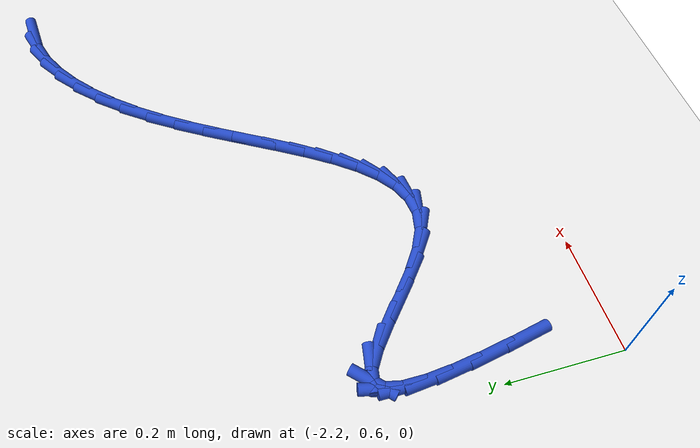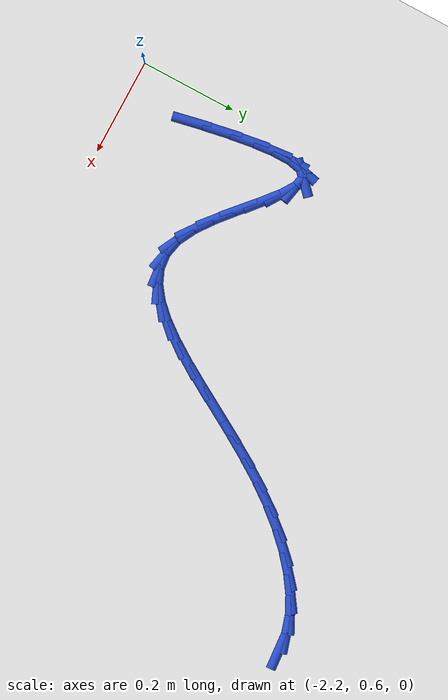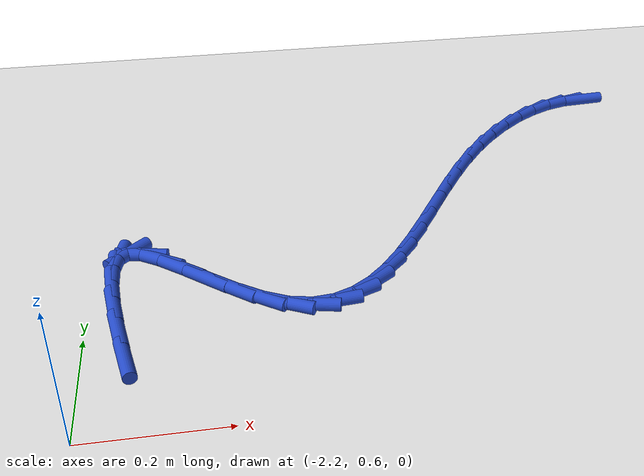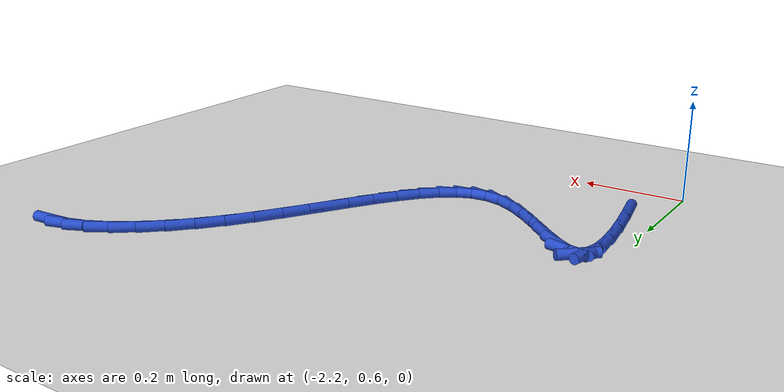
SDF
<sdf version="1.6">
 <world name="default">
  <model name="ground_plane">
   <static>1</static>
   <link name="link">
    <collision name="collision">
     <geometry><plane><normal>0 0 1</normal><size>100 100</size></plane></geometry>
     <surface><friction><ode><mu>100</mu><mu2>50</mu2></ode></friction></surface>
    </collision>
    <visual name="visual">
     <cast_shadows>0</cast_shadows>
     <geometry><plane><normal>0 0 1</normal><size>100 100</size></plane></geometry>
     <material>
      <script><uri>file://media/materials/scripts/gazebo.material</uri><name>Gazebo/WhiteGlow</name></script>
     </material>
    </visual>
   </link>
  </model>
  <model name="line">
   <link name="link_50">
    <pose>-1.2924207423937293 1.3919109432861934 0.01 0 1.57 0.07751048192360882</pose>
    <collision name="collision">
     <geometry><cylinder><radius>0.01</radius><length>0.08</length></cylinder></geometry>
    </collision>
    <visual name="visual">
     <material>
      <script><name>Gazebo/Blue</name><uri>file://media/materials/scripts/gazebo.material</uri></script>
     </material>
     <geometry><cylinder><radius>0.01</radius><length>0.08</length></cylinder></geometry>
    </visual>
   </link>
   <link name="link_51">
    <pose>-1.3282879846106181 1.3891252751725964 0.01 0 1.57 0.29494766049136717</pose>
    <collision name="collision">
     <geometry><cylinder><radius>0.01</radius><length>0.08</length></cylinder></geometry>
    </collision>
    <visual name="visual">
     <material>
      <script><name>Gazebo/Blue</name><uri>file://media/materials/scripts/gazebo.material</uri></script>
     </material>
     <geometry><cylinder><radius>0.01</radius><length>0.08</length></cylinder></geometry>
    </visual>
   </link>
   <link name="link_52">
    <pose>-1.365109434739487 1.3779385854448991 0.01 0 1.57 0.4657607186810607</pose>
    <collision name="collision">
     <geometry><cylinder><radius>0.01</radius><length>0.08</length></cylinder></geometry>
    </collision>
    <visual name="visual">
     <material>
      <script><name>Gazebo/Blue</name><uri>file://media/materials/scripts/gazebo.material</uri></script>
     </material>
     <geometry><cylinder><radius>0.01</radius><length>0.08</length></cylinder></geometry>
    </visual>
   </link>
   <link name="link_53">
    <pose>-1.4023716911295903 1.359208928959297 0.01 0 1.57 0.5994824240193372</pose>
    <collision name="collision">
     <geometry><cylinder><radius>0.01</radius><length>0.08</length></cylinder></geometry>
    </collision>
    <visual name="visual">
     <material>
      <script><name>Gazebo/Blue</name><uri>file://media/materials/scripts/gazebo.material</uri></script>
     </material>
     <geometry><cylinder><radius>0.01</radius><length>0.08</length></cylinder></geometry>
    </visual>
   </link>
   <link name="link_54">
    <pose>-1.439561352130183 1.3337943605719869 0.01 0 1.57 0.7065256217840215</pose>
    <collision name="collision">
     <geometry><cylinder><radius>0.01</radius><length>0.08</length></cylinder></geometry>
    </collision>
    <visual name="visual">
     <material>
      <script><name>Gazebo/Blue</name><uri>file://media/materials/scripts/gazebo.material</uri></script>
     </material>
     <geometry><cylinder><radius>0.01</radius><length>0.08</length></cylinder></geometry>
    </visual>
   </link>
   <link name="link_55">
    <pose>-1.4761650160905198 1.302552935139165 0.01 0 1.57 0.7952419135481348</pose>
    <collision name="collision">
     <geometry><cylinder><radius>0.01</radius><length>0.08</length></cylinder></geometry>
    </collision>
    <visual name="visual">
     <material>
      <script><name>Gazebo/Blue</name><uri>file://media/materials/scripts/gazebo.material</uri></script>
     </material>
     <geometry><cylinder><radius>0.01</radius><length>0.08</length></cylinder></geometry>
    </visual>
   </link>
   <link name="link_56">
    <pose>-1.511669281359856 1.2663427075170277 0.01 0 1.57 0.8718189264634538</pose>
    <collision name="collision">
     <geometry><cylinder><radius>0.01</radius><length>0.08</length></cylinder></geometry>
    </collision>
    <visual name="visual">
     <material>
      <script><name>Gazebo/Blue</name><uri>file://media/materials/scripts/gazebo.material</uri></script>
     </material>
     <geometry><cylinder><radius>0.01</radius><length>0.08</length></cylinder></geometry>
    </visual>
   </link>
   <link name="link_57">
    <pose>-1.545560746287446 1.2260217325617713 0.01 0 1.57 0.9396032420666363</pose>
    <collision name="collision">
     <geometry><cylinder><radius>0.01</radius><length>0.08</length></cylinder></geometry>
    </collision>
    <visual name="visual">
     <material>
      <script><name>Gazebo/Blue</name><uri>file://media/materials/scripts/gazebo.material</uri></script>
     </material>
     <geometry><cylinder><radius>0.01</radius><length>0.08</length></cylinder></geometry>
    </visual>
   </link>
   <link name="link_58">
    <pose>-1.5773936114483118 1.1824713648348737 0.01 0 1.57 0.9917300465042784</pose>
    <collision name="collision">
     <geometry><cylinder><radius>0.01</radius><length>0.08</length></cylinder></geometry>
    </collision>
    <visual name="visual">
     <material>
      <script><name>Gazebo/Blue</name><uri>file://media/materials/scripts/gazebo.material</uri></script>
     </material>
     <geometry><cylinder><radius>0.01</radius><length>0.08</length></cylinder></geometry>
    </visual>
   </link>
   <link name="link_59">
    <pose>-1.6072782506019456 1.1367646489070746 0.01 0 1.57 1.0256263440788171</pose>
    <collision name="collision">
     <geometry><cylinder><radius>0.01</radius><length>0.08</length></cylinder></geometry>
    </collision>
    <visual name="visual">
     <material>
      <script><name>Gazebo/Blue</name><uri>file://media/materials/scripts/gazebo.material</uri></script>
     </material>
     <geometry><cylinder><radius>0.01</radius><length>0.08</length></cylinder></geometry>
    </visual>
   </link>
   <link name="link_60">
    <pose>-1.6355983027410979 1.0900688126297133 0.01 0 1.57 1.0426250279899079</pose>
    <collision name="collision">
     <geometry><cylinder><radius>0.01</radius><length>0.08</length></cylinder></geometry>
    </collision>
    <visual name="visual">
     <material>
      <script><name>Gazebo/Blue</name><uri>file://media/materials/scripts/gazebo.material</uri></script>
     </material>
     <geometry><cylinder><radius>0.01</radius><length>0.08</length></cylinder></geometry>
    </visual>
   </link>
   <link name="link_61">
    <pose>-1.6627393020520749 1.0435517370493579 0.01 0 1.57 1.0427539080265786</pose>
    <collision name="collision">
     <geometry><cylinder><radius>0.01</radius><length>0.08</length></cylinder></geometry>
    </collision>
    <visual name="visual">
     <material>
      <script><name>Gazebo/Blue</name><uri>file://media/materials/scripts/gazebo.material</uri></script>
     </material>
     <geometry><cylinder><radius>0.01</radius><length>0.08</length></cylinder></geometry>
    </visual>
   </link>
   <link name="link_62">
    <pose>-1.689086782721183 0.9983813032125762 0.01 0 1.57 1.0244347475375162</pose>
    <collision name="collision">
     <geometry><cylinder><radius>0.01</radius><length>0.08</length></cylinder></geometry>
    </collision>
    <visual name="visual">
     <material>
      <script><name>Gazebo/Blue</name><uri>file://media/materials/scripts/gazebo.material</uri></script>
     </material>
     <geometry><cylinder><radius>0.01</radius><length>0.08</length></cylinder></geometry>
    </visual>
   </link>
   <link name="link_63">
    <pose>-1.7150262789347281 0.9557253921659353 0.01 0 1.57 0.983954441137945</pose>
    <collision name="collision">
     <geometry><cylinder><radius>0.01</radius><length>0.08</length></cylinder></geometry>
    </collision>
    <visual name="visual">
     <material>
      <script><name>Gazebo/Blue</name><uri>file://media/materials/scripts/gazebo.material</uri></script>
     </material>
     <geometry><cylinder><radius>0.01</radius><length>0.08</length></cylinder></geometry>
    </visual>
   </link>
   <link name="link_64">
    <pose>-1.740943324879016 0.9167518849560031 0.01 0 1.57 0.9145210529931135</pose>
    <collision name="collision">
     <geometry><cylinder><radius>0.01</radius><length>0.08</length></cylinder></geometry>
    </collision>
    <visual name="visual">
     <material>
      <script><name>Gazebo/Blue</name><uri>file://media/materials/scripts/gazebo.material</uri></script>
     </material>
     <geometry><cylinder><radius>0.01</radius><length>0.08</length></cylinder></geometry>
    </visual>
   </link>
   <link name="link_65">
    <pose>-1.7672234547403538 0.8826286626293472 0.01 0 1.57 0.8049174356338774</pose>
    <collision name="collision">
     <geometry><cylinder><radius>0.01</radius><length>0.08</length></cylinder></geometry>
    </collision>
    <visual name="visual">
     <material>
      <script><name>Gazebo/Blue</name><uri>file://media/materials/scripts/gazebo.material</uri></script>
     </material>
     <geometry><cylinder><radius>0.01</radius><length>0.08</length></cylinder></geometry>
    </visual>
   </link>
   <link name="link_66">
    <pose>-1.794252202705047 0.8545236062325354 0.01 0 1.57 0.6388681710043597</pose>
    <collision name="collision">
     <geometry><cylinder><radius>0.01</radius><length>0.08</length></cylinder></geometry>
    </collision>
    <visual name="visual">
     <material>
      <script><name>Gazebo/Blue</name><uri>file://media/materials/scripts/gazebo.material</uri></script>
     </material>
     <geometry><cylinder><radius>0.01</radius><length>0.08</length></cylinder></geometry>
    </visual>
   </link>
   <link name="link_67">
    <pose>-1.8224151029594011 0.833604596812135 0.01 0 1.57 0.40044249190699444</pose>
    <collision name="collision">
     <geometry><cylinder><radius>0.01</radius><length>0.08</length></cylinder></geometry>
    </collision>
    <visual name="visual">
     <material>
      <script><name>Gazebo/Blue</name><uri>file://media/materials/scripts/gazebo.material</uri></script>
     </material>
     <geometry><cylinder><radius>0.01</radius><length>0.08</length></cylinder></geometry>
    </visual>
   </link>
   <link name="link_68">
    <pose>-1.8520976896897237 0.8210395154147139 0.01 0 1.57 0.09604682197793155</pose>
    <collision name="collision">
     <geometry><cylinder><radius>0.01</radius><length>0.08</length></cylinder></geometry>
    </collision>
    <visual name="visual">
     <material>
      <script><name>Gazebo/Blue</name><uri>file://media/materials/scripts/gazebo.material</uri></script>
     </material>
     <geometry><cylinder><radius>0.01</radius><length>0.08</length></cylinder></geometry>
    </visual>
   </link>
   <link name="link_69">
    <pose>-1.88368549708232 0.8179962430868395 0.01 0 1.57 -0.22198135086465193</pose>
    <collision name="collision">
     <geometry><cylinder><radius>0.01</radius><length>0.08</length></cylinder></geometry>
    </collision>
    <visual name="visual">
     <material>
      <script><name>Gazebo/Blue</name><uri>file://media/materials/scripts/gazebo.material</uri></script>
     </material>
     <geometry><cylinder><radius>0.01</radius><length>0.08</length></cylinder></geometry>
    </visual>
   </link>
   <link name="link_70">
    <pose>-1.9175640593234964 0.8256426608750795 0.01 0 1.57 -0.4845064492717018</pose>
    <collision name="collision">
     <geometry><cylinder><radius>0.01</radius><length>0.08</length></cylinder></geometry>
    </collision>
    <visual name="visual">
     <material>
      <script><name>Gazebo/Blue</name><uri>file://media/materials/scripts/gazebo.material</uri></script>
     </material>
     <geometry><cylinder><radius>0.01</radius><length>0.08</length></cylinder></geometry>
    </visual>
   </link>
   <link name="link_71">
    <pose>-1.95400169011768 0.8448216883925188 0.01 0 1.57 -0.6372565025701054</pose>
    <collision name="collision">
     <geometry><cylinder><radius>0.01</radius><length>0.08</length></cylinder></geometry>
    </collision>
    <visual name="visual">
     <material>
      <script><name>Gazebo/Blue</name><uri>file://media/materials/scripts/gazebo.material</uri></script>
     </material>
     <geometry><cylinder><radius>0.01</radius><length>0.08</length></cylinder></geometry>
    </visual>
   </link>
   <link name="link_72">
    <pose>-1.9920426819742527 0.8729829843154018 0.01 0 1.57 -0.709179409702418</pose>
    <collision name="collision">
     <geometry><cylinder><radius>0.01</radius><length>0.08</length></cylinder></geometry>
    </collision>
    <visual name="visual">
     <material>
      <script><name>Gazebo/Blue</name><uri>file://media/materials/scripts/gazebo.material</uri></script>
     </material>
     <geometry><cylinder><radius>0.01</radius><length>0.08</length></cylinder></geometry>
    </visual>
   </link>
   <link name="link_73">
    <pose>-2.0300028538674373 0.9055567155004101 0.01 0 1.57 -0.7300996747330574</pose>
    <collision name="collision">
     <geometry><cylinder><radius>0.01</radius><length>0.08</length></cylinder></geometry>
    </collision>
    <visual name="visual">
     <material>
      <script><name>Gazebo/Blue</name><uri>file://media/materials/scripts/gazebo.material</uri></script>
     </material>
     <geometry><cylinder><radius>0.01</radius><length>0.08</length></cylinder></geometry>
    </visual>
   </link>
   <link name="link_74">
    <pose>-2.0661883596268003 0.9379462548582148 0.01 0 1.57 -0.7009214867870286</pose>
    <collision name="collision">
     <geometry><cylinder><radius>0.01</radius><length>0.08</length></cylinder></geometry>
    </collision>
    <visual name="visual">
     <material>
      <script><name>Gazebo/Blue</name><uri>file://media/materials/scripts/gazebo.material</uri></script>
     </material>
     <geometry><cylinder><radius>0.01</radius><length>0.08</length></cylinder></geometry>
    </visual>
   </link>
   <link name="link_75">
    <pose>-2.098905353081909 0.9655549752994868 0.01 0 1.57 -0.5845151752134596</pose>
    <collision name="collision">
     <geometry><cylinder><radius>0.01</radius><length>0.08</length></cylinder></geometry>
    </collision>
    <visual name="visual">
     <material>
      <script><name>Gazebo/Blue</name><uri>file://media/materials/scripts/gazebo.material</uri></script>
     </material>
     <geometry><cylinder><radius>0.01</radius><length>0.08</length></cylinder></geometry>
    </visual>
   </link>
   <link name="link_76">
    <pose>-2.1264599880623285 0.9837862497348966 0.01 0 1.57 -0.20331114006416132</pose>
    <collision name="collision">
     <geometry><cylinder><radius>0.01</radius><length>0.08</length></cylinder></geometry>
    </collision>
    <visual name="visual">
     <material>
      <script><name>Gazebo/Blue</name><uri>file://media/materials/scripts/gazebo.material</uri></script>
     </material>
     <geometry><cylinder><radius>0.01</radius><length>0.08</length></cylinder></geometry>
    </visual>
   </link>
   <link name="link_77">
    <pose>-2.1471626669803614 0.988054304968391 0.01 0 1.57 0.7589971757312418</pose>
    <collision name="collision">
     <geometry><cylinder><radius>0.01</radius><length>0.08</length></cylinder></geometry>
    </collision>
    <visual name="visual">
     <material>
      <script><name>Gazebo/Blue</name><uri>file://media/materials/scripts/gazebo.material</uri></script>
     </material>
     <geometry><cylinder><radius>0.01</radius><length>0.08</length></cylinder></geometry>
    </visual>
   </link>
   <link name="link_78">
    <pose>-2.1601075117181416 0.9757755431201331 0.01 0 1.57 1.3536207738571697</pose>
    <collision name="collision">
     <geometry><cylinder><radius>0.01</radius><length>0.08</length></cylinder></geometry>
    </collision>
    <visual name="visual">
     <material>
      <script><name>Gazebo/Blue</name><uri>file://media/materials/scripts/gazebo.material</uri></script>
     </material>
     <geometry><cylinder><radius>0.01</radius><length>0.08</length></cylinder></geometry>
    </visual>
   </link>
   <link name="link_79">
    <pose>-2.166082997216881 0.9486949456073931 0.01 0 1.57 1.5704000268342695</pose>
    <collision name="collision">
     <geometry><cylinder><radius>0.01</radius><length>0.08</length></cylinder></geometry>
    </collision>
    <visual name="visual">
     <material>
      <script><name>Gazebo/Blue</name><uri>file://media/materials/scripts/gazebo.material</uri></script>
     </material>
     <geometry><cylinder><radius>0.01</radius><length>0.08</length></cylinder></geometry>
    </visual>
   </link>
   <link name="link_80">
    <pose>-2.1660986798585182 0.9091222926313598 0.01 0 1.57 -1.4719422075776507</pose>
    <collision name="collision">
     <geometry><cylinder><radius>0.01</radius><length>0.08</length></cylinder></geometry>
    </collision>
    <visual name="visual">
     <material>
      <script><name>Gazebo/Blue</name><uri>file://media/materials/scripts/gazebo.material</uri></script>
     </material>
     <geometry><cylinder><radius>0.01</radius><length>0.08</length></cylinder></geometry>
    </visual>
   </link>
   <link name="link_81">
    <pose>-2.161164116024991 0.8593673643932218 0.01 0 1.57 -1.4179860213230178</pose>
    <collision name="collision">
     <geometry><cylinder><radius>0.01</radius><length>0.08</length></cylinder></geometry>
    </collision>
    <visual name="visual">
     <material>
      <script><name>Gazebo/Blue</name><uri>file://media/materials/scripts/gazebo.material</uri></script>
     </material>
     <geometry><cylinder><radius>0.01</radius><length>0.08</length></cylinder></geometry>
    </visual>
   </link>
   <link name="link_82">
    <pose>-2.152288862098237 0.8017399410941685 0.01 0 1.57 -1.386086921320594</pose>
    <collision name="collision">
     <geometry><cylinder><radius>0.01</radius><length>0.08</length></cylinder></geometry>
    </collision>
    <visual name="visual">
     <material>
      <script><name>Gazebo/Blue</name><uri>file://media/materials/scripts/gazebo.material</uri></script>
     </material>
     <geometry><cylinder><radius>0.01</radius><length>0.08</length></cylinder></geometry>
    </visual>
   </link>
   <link name="link_83">
    <pose>-2.1404824744601965 0.7385498029353889 0.01 0 1.57 -1.3670508179523067</pose>
    <collision name="collision">
     <geometry><cylinder><radius>0.01</radius><length>0.08</length></cylinder></geometry>
    </collision>
    <visual name="visual">
     <material>
      <script><name>Gazebo/Blue</name><uri>file://media/materials/scripts/gazebo.material</uri></script>
     </material>
     <geometry><cylinder><radius>0.01</radius><length>0.08</length></cylinder></geometry>
    </visual>
   </link>
  </model>
 </world>
</sdf>
